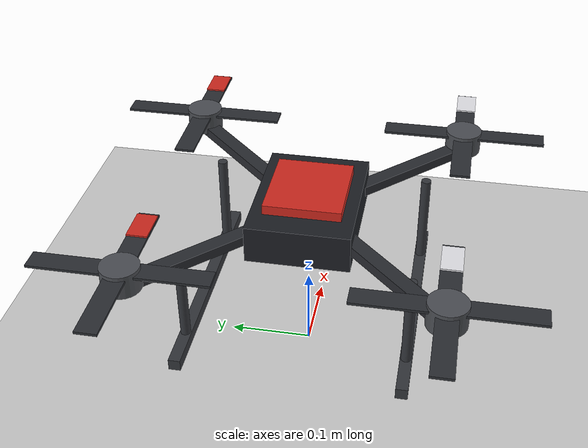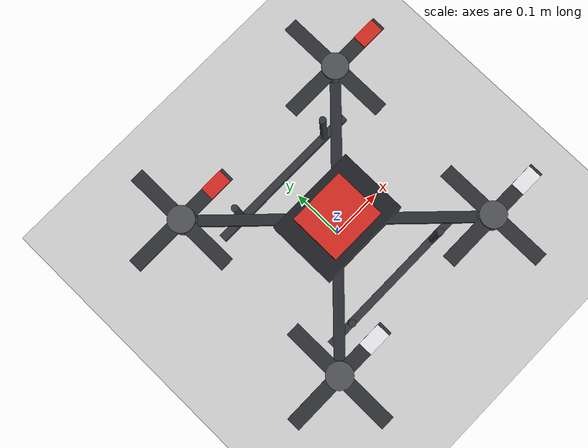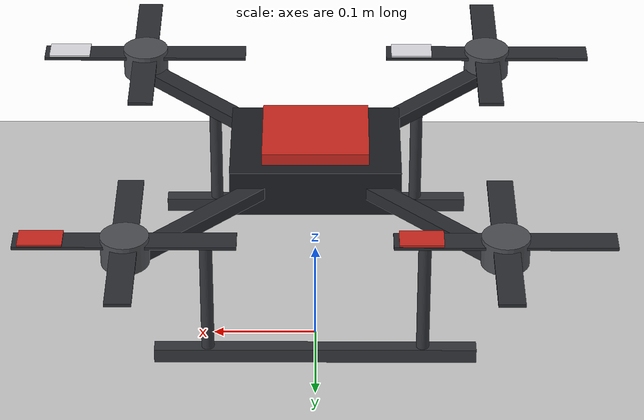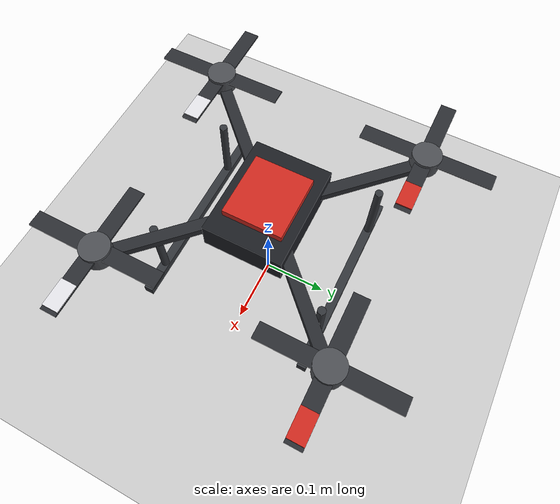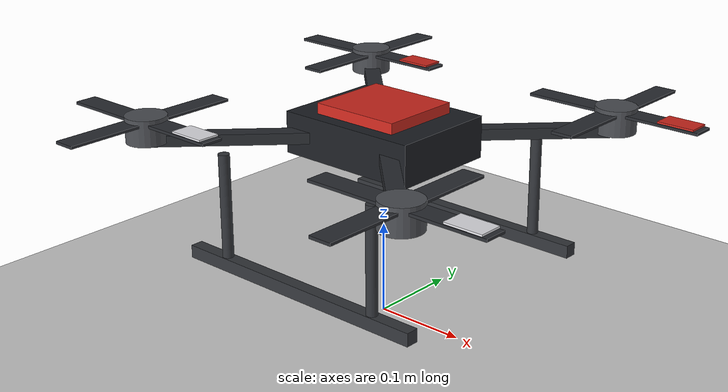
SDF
<?xml version="1.0" ?>
<sdf version="1.9">
  <world name="quad">

    <!-- 1 kHz control loop: HomeFly expects exactly one IMU frame per
         control period (FlightConfig::control_period_us = 1000). -->
    <physics name="homefly_1khz" type="ignored">
      <max_step_size>0.001</max_step_size>
      <real_time_update_rate>1000</real_time_update_rate>
      <real_time_factor>1.0</real_time_factor>
    </physics>

    <plugin filename="gz-sim-physics-system"
            name="gz::sim::systems::Physics"/>
    <plugin filename="gz-sim-imu-system"
            name="gz::sim::systems::Imu"/>
    <plugin filename="gz-sim-sensors-system"
            name="gz::sim::systems::Sensors"/>
    <plugin filename="gz-sim-user-commands-system"
            name="gz::sim::systems::UserCommands"/>
    <plugin filename="gz-sim-scene-broadcaster-system"
            name="gz::sim::systems::SceneBroadcaster"/>

    <light type="directional" name="sun">
      <cast_shadows>true</cast_shadows>
      <pose>0 0 10 0 0 0</pose>
      <diffuse>0.8 0.8 0.8 1</diffuse>
      <specular>0.2 0.2 0.2 1</specular>
      <direction>-0.5 0.1 -1</direction>
    </light>

    <model name="ground_plane">
      <static>true</static>
      <link name="link">
        <collision name="collision">
          <geometry><plane><normal>0 0 1</normal><size>100 100</size></plane></geometry>
        </collision>
        <visual name="visual">
          <geometry><plane><normal>0 0 1</normal><size>100 100</size></plane></geometry>
          <material><ambient>0.8 0.8 0.8 1</ambient></material>
        </visual>
      </link>
    </model>

    <model name="homefly" canonical_link="body">
      <pose>0 0 0.2 0 0 0</pose>

      <link name="body">
        <inertial>
          <mass>0.8</mass>
          <inertia>
            <ixx>0.005</ixx><iyy>0.005</iyy><izz>0.009</izz>
            <ixy>0</ixy><ixz>0</ixz><iyz>0</iyz>
          </inertia>
        </inertial>
        <visual name="iris_pod">
          <geometry><box><size>0.16 0.12 0.045</size></box></geometry>
          <material><diffuse>0.11 0.12 0.14 1</diffuse></material>
        </visual>
        <visual name="iris_canopy">
          <pose>0 0 0.028 0 0 0</pose>
          <geometry><box><size>0.10 0.09 0.012</size></box></geometry>
          <material><diffuse>0.82 0.16 0.12 1</diffuse></material>
        </visual>
        <visual name="iris_arm_0">
          <pose degrees="true">0.085 0.085 0 0 0 45</pose>
          <geometry><box><size>0.24 0.018 0.012</size></box></geometry>
          <material><diffuse>0.16 0.17 0.19 1</diffuse></material>
        </visual>
        <visual name="iris_arm_1">
          <pose degrees="true">0.085 -0.085 0 0 0 -45</pose>
          <geometry><box><size>0.24 0.018 0.012</size></box></geometry>
          <material><diffuse>0.16 0.17 0.19 1</diffuse></material>
        </visual>
        <visual name="iris_arm_2">
          <pose degrees="true">-0.085 -0.085 0 0 0 45</pose>
          <geometry><box><size>0.24 0.018 0.012</size></box></geometry>
          <material><diffuse>0.16 0.17 0.19 1</diffuse></material>
        </visual>
        <visual name="iris_arm_3">
          <pose degrees="true">-0.085 0.085 0 0 0 -45</pose>
          <geometry><box><size>0.24 0.018 0.012</size></box></geometry>
          <material><diffuse>0.16 0.17 0.19 1</diffuse></material>
        </visual>
        <visual name="iris_motor_0">
          <pose>0.17 0.17 0.012 0 0 0</pose>
          <geometry><cylinder><radius>0.022</radius><length>0.028</length></cylinder></geometry>
          <material><diffuse>0.30 0.31 0.33 1</diffuse></material>
        </visual>
        <visual name="iris_motor_1">
          <pose>0.17 -0.17 0.012 0 0 0</pose>
          <geometry><cylinder><radius>0.022</radius><length>0.028</length></cylinder></geometry>
          <material><diffuse>0.30 0.31 0.33 1</diffuse></material>
        </visual>
        <visual name="iris_motor_2">
          <pose>-0.17 -0.17 0.012 0 0 0</pose>
          <geometry><cylinder><radius>0.022</radius><length>0.028</length></cylinder></geometry>
          <material><diffuse>0.30 0.31 0.33 1</diffuse></material>
        </visual>
        <visual name="iris_motor_3">
          <pose>-0.17 0.17 0.012 0 0 0</pose>
          <geometry><cylinder><radius>0.022</radius><length>0.028</length></cylinder></geometry>
          <material><diffuse>0.30 0.31 0.33 1</diffuse></material>
        </visual>
        <visual name="iris_skid_l">
          <pose>0 0.13 -0.13 0 0 0</pose>
          <geometry><box><size>0.30 0.014 0.014</size></box></geometry>
          <material><diffuse>0.20 0.21 0.23 1</diffuse></material>
        </visual>
        <visual name="iris_skid_r">
          <pose>0 -0.13 -0.13 0 0 0</pose>
          <geometry><box><size>0.30 0.014 0.014</size></box></geometry>
          <material><diffuse>0.20 0.21 0.23 1</diffuse></material>
        </visual>
        <visual name="iris_strut_0">
          <pose>0.1 0.13 -0.07 0 0 0</pose>
          <geometry><cylinder><radius>0.006</radius><length>0.12</length></cylinder></geometry>
          <material><diffuse>0.20 0.21 0.23 1</diffuse></material>
        </visual>
        <visual name="iris_strut_1">
          <pose>0.1 -0.13 -0.07 0 0 0</pose>
          <geometry><cylinder><radius>0.006</radius><length>0.12</length></cylinder></geometry>
          <material><diffuse>0.20 0.21 0.23 1</diffuse></material>
        </visual>
        <visual name="iris_strut_2">
          <pose>-0.1 0.13 -0.07 0 0 0</pose>
          <geometry><cylinder><radius>0.006</radius><length>0.12</length></cylinder></geometry>
          <material><diffuse>0.20 0.21 0.23 1</diffuse></material>
        </visual>
        <visual name="iris_strut_3">
          <pose>-0.1 -0.13 -0.07 0 0 0</pose>
          <geometry><cylinder><radius>0.006</radius><length>0.12</length></cylinder></geometry>
          <material><diffuse>0.20 0.21 0.23 1</diffuse></material>
        </visual>
        <collision name="body_collision">
          <geometry><box><size>0.20 0.20 0.05</size></box></geometry>
        </collision>

        <!-- Only angular_velocity + linear_acceleration are consumed by the
             HomeFly complementary filter; no quaternion is needed. -->
        <sensor name="imu" type="imu">
          <topic>/world/quad/model/homefly/link/body/sensor/imu/imu</topic>
          <always_on>1</always_on>
          <update_rate>1000</update_rate>
          <imu>
            <angular_velocity>
              <x><noise type="gaussian"><mean>0</mean><stddev>0</stddev></noise></x>
              <y><noise type="gaussian"><mean>0</mean><stddev>0</stddev></noise></y>
              <z><noise type="gaussian"><mean>0</mean><stddev>0</stddev></noise></z>
            </angular_velocity>
            <linear_acceleration>
              <x><noise type="gaussian"><mean>0</mean><stddev>0</stddev></noise></x>
              <y><noise type="gaussian"><mean>0</mean><stddev>0</stddev></noise></y>
              <z><noise type="gaussian"><mean>0</mean><stddev>0</stddev></noise></z>
            </linear_acceleration>
          </imu>
        </sensor>
      </link>

      <!-- Quad-X rotor layout. motorNumber matches MotorMixer's Quad-X order;
           the bridge writes Actuators.velocity[motorNumber] in rad/s. -->
      <link name="rotor_0">
        <pose>0.17 0.17 0.02 0 0 0</pose>
        <inertial><mass>0.005</mass><inertia><ixx>1e-6</ixx><iyy>1e-6</iyy><izz>2e-6</izz><ixy>0</ixy><ixz>0</ixz><iyz>0</iyz></inertia></inertial>
        <visual name="visual">
          <geometry><cylinder><radius>0.012</radius><length>0.008</length></cylinder></geometry>
          <material><diffuse>0.30 0.31 0.33 1</diffuse></material>
        </visual>
        <visual name="prop_blade_a">
          <geometry><box><size>0.20 0.024 0.003</size></box></geometry>
          <material><diffuse>0.17 0.18 0.20 1</diffuse></material>
        </visual>
        <visual name="prop_blade_b">
          <pose degrees="true">0 0 0 0 0 90</pose>
          <geometry><box><size>0.20 0.024 0.003</size></box></geometry>
          <material><diffuse>0.17 0.18 0.20 1</diffuse></material>
        </visual>
        <visual name="prop_mark">
          <pose>0.075 0 0.003 0 0 0</pose>
          <geometry><box><size>0.04 0.024 0.002</size></box></geometry>
          <material><diffuse>0.82 0.16 0.12 1</diffuse></material>
        </visual>
      </link>
      <joint name="rotor_0_joint" type="revolute">
        <parent>body</parent><child>rotor_0</child>
        <axis><xyz>0 0 1</xyz><limit><lower>-1e16</lower><upper>1e16</upper></limit></axis>
      </joint>

      <link name="rotor_1">
        <pose>0.17 -0.17 0.02 0 0 0</pose>
        <inertial><mass>0.005</mass><inertia><ixx>1e-6</ixx><iyy>1e-6</iyy><izz>2e-6</izz><ixy>0</ixy><ixz>0</ixz><iyz>0</iyz></inertia></inertial>
        <visual name="visual">
          <geometry><cylinder><radius>0.012</radius><length>0.008</length></cylinder></geometry>
          <material><diffuse>0.30 0.31 0.33 1</diffuse></material>
        </visual>
        <visual name="prop_blade_a">
          <geometry><box><size>0.20 0.024 0.003</size></box></geometry>
          <material><diffuse>0.17 0.18 0.20 1</diffuse></material>
        </visual>
        <visual name="prop_blade_b">
          <pose degrees="true">0 0 0 0 0 90</pose>
          <geometry><box><size>0.20 0.024 0.003</size></box></geometry>
          <material><diffuse>0.17 0.18 0.20 1</diffuse></material>
        </visual>
        <visual name="prop_mark">
          <pose>0.075 0 0.003 0 0 0</pose>
          <geometry><box><size>0.04 0.024 0.002</size></box></geometry>
          <material><diffuse>0.90 0.90 0.92 1</diffuse></material>
        </visual>
      </link>
      <joint name="rotor_1_joint" type="revolute">
        <parent>body</parent><child>rotor_1</child>
        <axis><xyz>0 0 1</xyz><limit><lower>-1e16</lower><upper>1e16</upper></limit></axis>
      </joint>

      <link name="rotor_2">
        <pose>-0.17 -0.17 0.02 0 0 0</pose>
        <inertial><mass>0.005</mass><inertia><ixx>1e-6</ixx><iyy>1e-6</iyy><izz>2e-6</izz><ixy>0</ixy><ixz>0</ixz><iyz>0</iyz></inertia></inertial>
        <visual name="visual">
          <geometry><cylinder><radius>0.012</radius><length>0.008</length></cylinder></geometry>
          <material><diffuse>0.30 0.31 0.33 1</diffuse></material>
        </visual>
        <visual name="prop_blade_a">
          <geometry><box><size>0.20 0.024 0.003</size></box></geometry>
          <material><diffuse>0.17 0.18 0.20 1</diffuse></material>
        </visual>
        <visual name="prop_blade_b">
          <pose degrees="true">0 0 0 0 0 90</pose>
          <geometry><box><size>0.20 0.024 0.003</size></box></geometry>
          <material><diffuse>0.17 0.18 0.20 1</diffuse></material>
        </visual>
        <visual name="prop_mark">
          <pose>0.075 0 0.003 0 0 0</pose>
          <geometry><box><size>0.04 0.024 0.002</size></box></geometry>
          <material><diffuse>0.90 0.90 0.92 1</diffuse></material>
        </visual>
      </link>
      <joint name="rotor_2_joint" type="revolute">
        <parent>body</parent><child>rotor_2</child>
        <axis><xyz>0 0 1</xyz><limit><lower>-1e16</lower><upper>1e16</upper></limit></axis>
      </joint>

      <link name="rotor_3">
        <pose>-0.17 0.17 0.02 0 0 0</pose>
        <inertial><mass>0.005</mass><inertia><ixx>1e-6</ixx><iyy>1e-6</iyy><izz>2e-6</izz><ixy>0</ixy><ixz>0</ixz><iyz>0</iyz></inertia></inertial>
        <visual name="visual">
          <geometry><cylinder><radius>0.012</radius><length>0.008</length></cylinder></geometry>
          <material><diffuse>0.30 0.31 0.33 1</diffuse></material>
        </visual>
        <visual name="prop_blade_a">
          <geometry><box><size>0.20 0.024 0.003</size></box></geometry>
          <material><diffuse>0.17 0.18 0.20 1</diffuse></material>
        </visual>
        <visual name="prop_blade_b">
          <pose degrees="true">0 0 0 0 0 90</pose>
          <geometry><box><size>0.20 0.024 0.003</size></box></geometry>
          <material><diffuse>0.17 0.18 0.20 1</diffuse></material>
        </visual>
        <visual name="prop_mark">
          <pose>0.075 0 0.003 0 0 0</pose>
          <geometry><box><size>0.04 0.024 0.002</size></box></geometry>
          <material><diffuse>0.82 0.16 0.12 1</diffuse></material>
        </visual>
      </link>
      <joint name="rotor_3_joint" type="revolute">
        <parent>body</parent><child>rotor_3</child>
        <axis><xyz>0 0 1</xyz><limit><lower>-1e16</lower><upper>1e16</upper></limit></axis>
      </joint>

      <plugin filename="gz-sim-multicopter-motor-model-system"
              name="gz::sim::systems::MulticopterMotorModel">
        <jointName>rotor_0_joint</jointName><linkName>rotor_0</linkName>
        <turningDirection>ccw</turningDirection>
        <timeConstantUp>0.0125</timeConstantUp><timeConstantDown>0.025</timeConstantDown>
        <maxRotVelocity>1000</maxRotVelocity><motorConstant>8.54858e-06</motorConstant>
        <momentConstant>0.016</momentConstant><commandSubTopic>actuators</commandSubTopic>
        <motorNumber>0</motorNumber><rotorDragCoefficient>8.06428e-05</rotorDragCoefficient>
        <rollingMomentCoefficient>1e-06</rollingMomentCoefficient>
        <rotorVelocitySlowdownSim>10</rotorVelocitySlowdownSim><motorType>velocity</motorType>
      </plugin>
      <plugin filename="gz-sim-multicopter-motor-model-system"
              name="gz::sim::systems::MulticopterMotorModel">
        <jointName>rotor_1_joint</jointName><linkName>rotor_1</linkName>
        <turningDirection>cw</turningDirection>
        <timeConstantUp>0.0125</timeConstantUp><timeConstantDown>0.025</timeConstantDown>
        <maxRotVelocity>1000</maxRotVelocity><motorConstant>8.54858e-06</motorConstant>
        <momentConstant>0.016</momentConstant><commandSubTopic>actuators</commandSubTopic>
        <motorNumber>1</motorNumber><rotorDragCoefficient>8.06428e-05</rotorDragCoefficient>
        <rollingMomentCoefficient>1e-06</rollingMomentCoefficient>
        <rotorVelocitySlowdownSim>10</rotorVelocitySlowdownSim><motorType>velocity</motorType>
      </plugin>
      <plugin filename="gz-sim-multicopter-motor-model-system"
              name="gz::sim::systems::MulticopterMotorModel">
        <jointName>rotor_2_joint</jointName><linkName>rotor_2</linkName>
        <turningDirection>cw</turningDirection>
        <timeConstantUp>0.0125</timeConstantUp><timeConstantDown>0.025</timeConstantDown>
        <maxRotVelocity>1000</maxRotVelocity><motorConstant>8.54858e-06</motorConstant>
        <momentConstant>0.016</momentConstant><commandSubTopic>actuators</commandSubTopic>
        <motorNumber>2</motorNumber><rotorDragCoefficient>8.06428e-05</rotorDragCoefficient>
        <rollingMomentCoefficient>1e-06</rollingMomentCoefficient>
        <rotorVelocitySlowdownSim>10</rotorVelocitySlowdownSim><motorType>velocity</motorType>
      </plugin>
      <plugin filename="gz-sim-multicopter-motor-model-system"
              name="gz::sim::systems::MulticopterMotorModel">
        <jointName>rotor_3_joint</jointName><linkName>rotor_3</linkName>
        <turningDirection>ccw</turningDirection>
        <timeConstantUp>0.0125</timeConstantUp><timeConstantDown>0.025</timeConstantDown>
        <maxRotVelocity>1000</maxRotVelocity><motorConstant>8.54858e-06</motorConstant>
        <momentConstant>0.016</momentConstant><commandSubTopic>actuators</commandSubTopic>
        <motorNumber>3</motorNumber><rotorDragCoefficient>8.06428e-05</rotorDragCoefficient>
        <rollingMomentCoefficient>1e-06</rollingMomentCoefficient>
        <rotorVelocitySlowdownSim>10</rotorVelocitySlowdownSim><motorType>velocity</motorType>
      </plugin>
    </model>
  </world>
</sdf>
